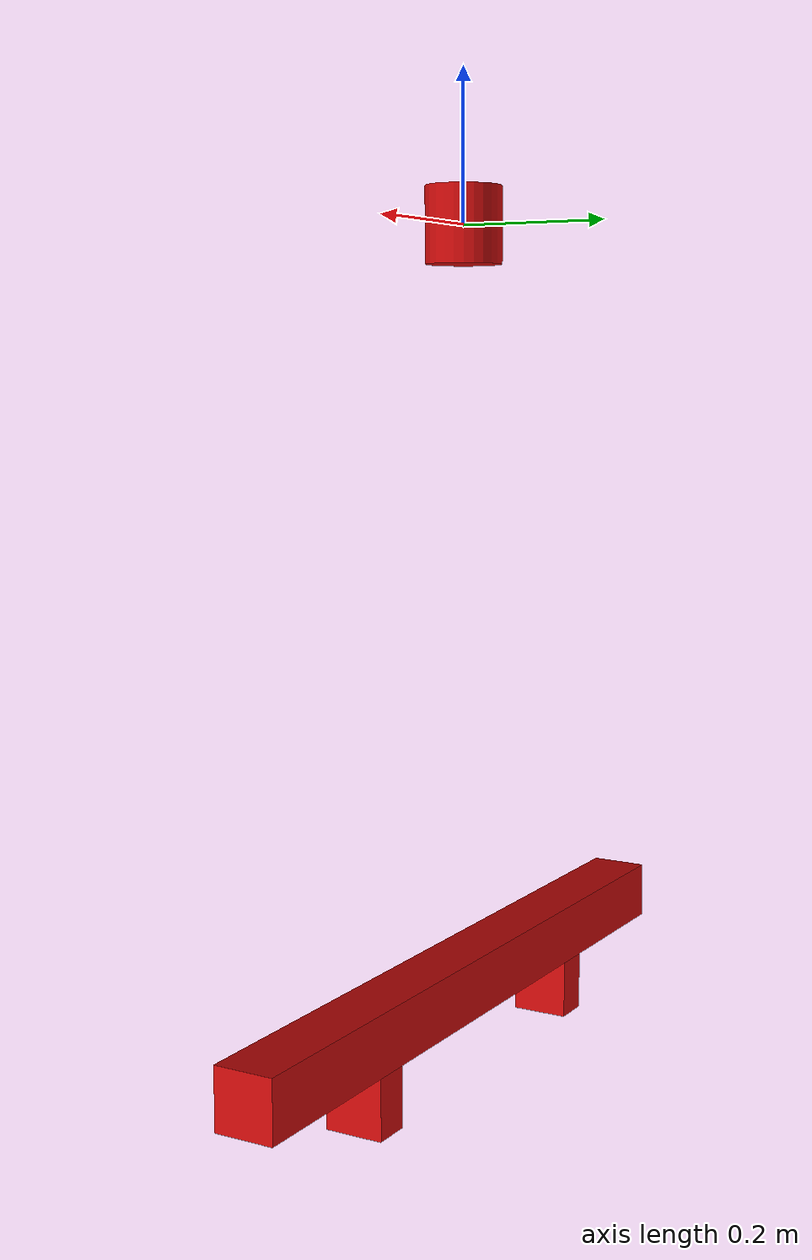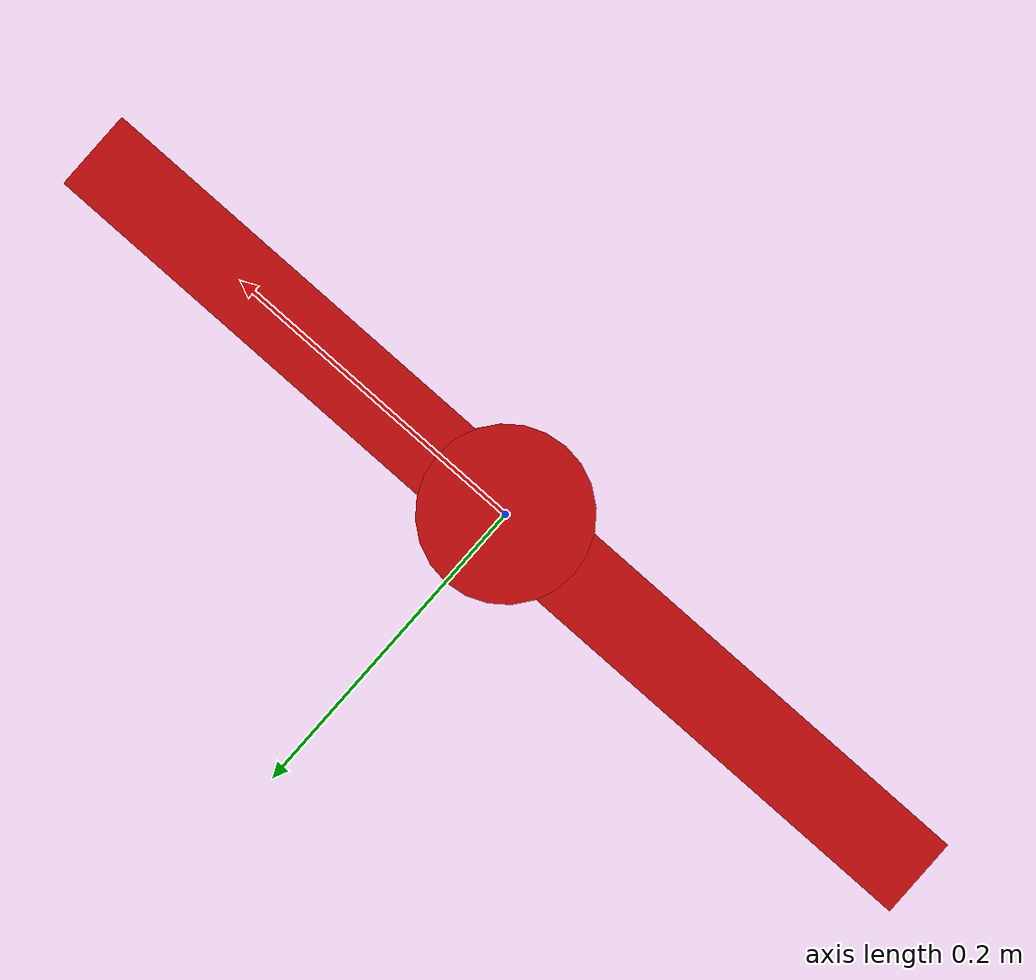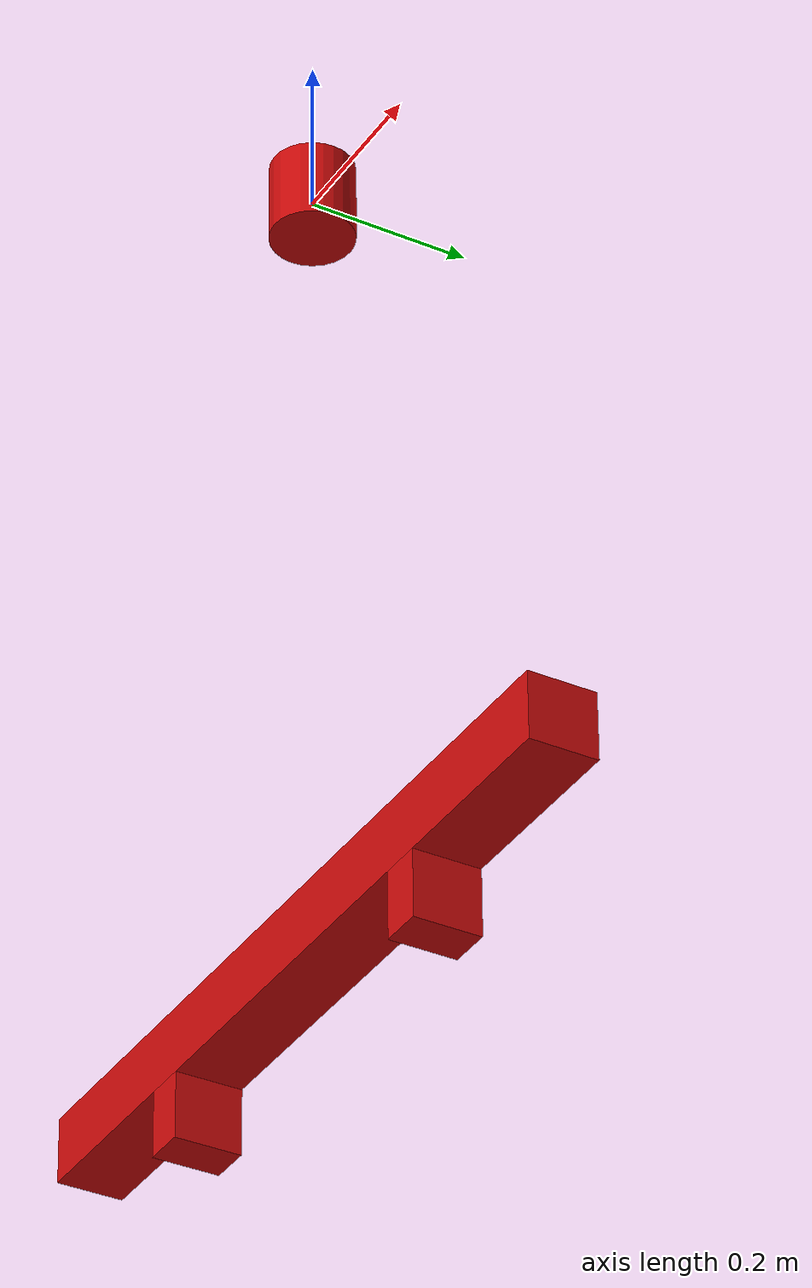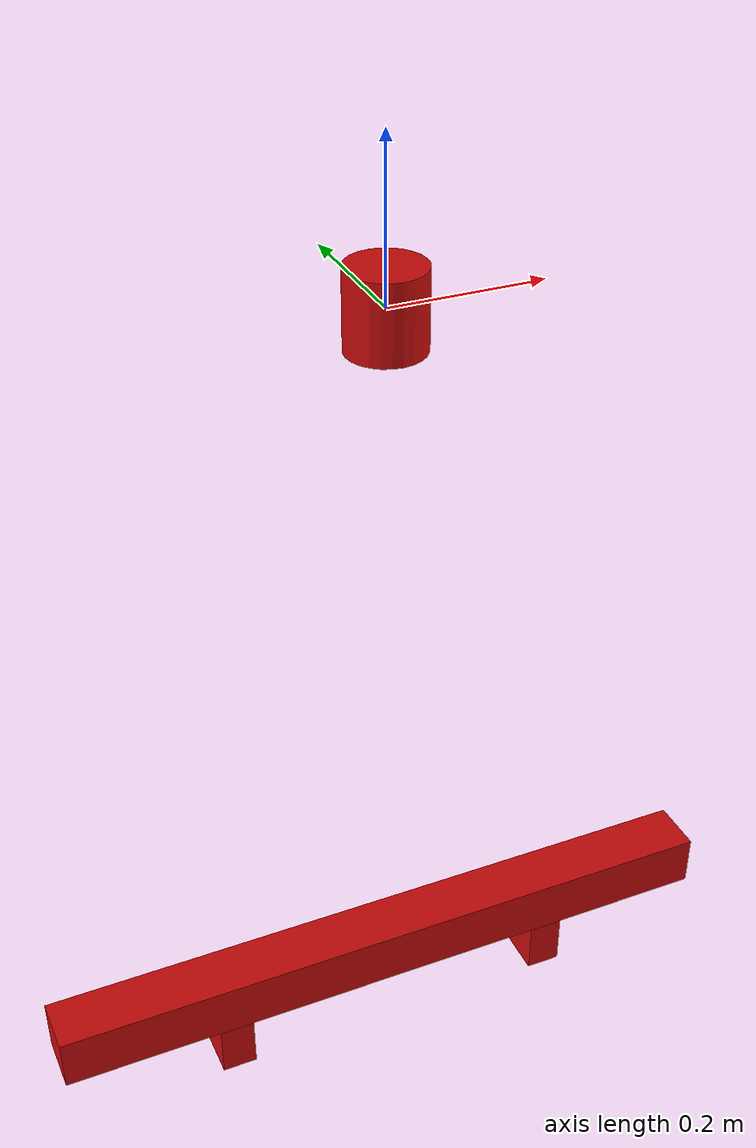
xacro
<?xml version="1.0" encoding="UTF-8"?>
<robot xmlns:xacro="http://wiki.ros.org/xacro" name="crane">

<xacro:arg name="use_mock_hardware" default="true" />

<xacro:include filename="$(find crane_description)/urdf/crane/crane_macro.xacro"/>
<xacro:include filename="$(find crane_description)/urdf/crane/crane_macro.ros2_control.xacro"/>

<xacro:crane/>
<xacro:crane_ros2_control use_mock_hardware="$(arg use_mock_hardware)" />
</robot>

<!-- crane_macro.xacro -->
<robot xmlns:xacro="http://wiki.ros.org/xacro">

<xacro:include filename="$(find crane_description)/urdf/common.xacro"/>
    <xacro:macro name="crane">
        <!-- LINKS -->
        <link name="base_link">
            <collision>
            <origin xyz="0 0 0" rpy="0 0 0"/>
            <geometry>
                <cylinder length= "0.1" radius= "0.05"/>
            </geometry>
            </collision>

            <visual>
            <origin xyz="0 0 0" rpy="0 0 0"/>
            <geometry>
                <cylinder length= "0.1" radius= "0.05"/>
            </geometry>
            <material name="light_red"/>
            </visual>
        </link>

        <link name="spreader_link">
            <collision>
            <origin xyz="0 0 0" rpy="0 0 0"/>
            <geometry>
                <box size= "1 0.08 0.08"/>
            </geometry>
            </collision>

            <visual>
            <origin xyz="0 0 0" rpy="0 0 0"/>
            <geometry>
                <box size= "1 0.08 0.08"/>
            </geometry>
            <material name="light_red"/>
            </visual>
        </link>

        <link name="LG_link">
            <collision>
            <origin xyz="0 0 0" rpy="0 0 0"/>
            <geometry>
                <box size= "0.05 0.08 0.08"/>
            </geometry>
            </collision>

            <visual>
            <origin xyz="0 0 0" rpy="0 0 0"/>
            <geometry>
                <box size= "0.05 0.08 0.08"/>
            </geometry>
            <material name="light_red"/>
            </visual>
        </link>

        <link name="RG_link">
            <collision>
            <origin xyz="0 0 0" rpy="0 0 0"/>
            <geometry>
                <box size= "0.05 0.08 0.08"/>
            </geometry>
            </collision>

            <visual>
            <origin xyz="0 0 0" rpy="0 0 0"/>
            <geometry>
                <box size= "0.05 0.08 0.08"/>
            </geometry>
            <material name="light_red"/>
            </visual>
        </link>

        <joint name="swivel_joint" type="continuous">
            <parent link="base_link"/>
            <child link="spreader_link"/>
            <origin xyz="0 0 -1" rpy="0 0 0"/>
            <axis xyz="0 0 1"/>
            <limit effort="100" velocity="1.0"/>
        </joint>

        <joint name="LG_lin_joint" type="prismatic">
            <parent link="spreader_link"/>
            <child link="LG_link"/>
            <origin xyz="-0.25 0 -0.08" rpy="0 0 0"/>
            <axis xyz="1 0 0"/>
            <limit lower="-0.5" upper="0.0" effort="100" velocity="1.0"/>
        </joint>

        <joint name="RG_lin_joint" type="prismatic">
            <parent link="spreader_link"/>
            <child link="RG_link"/>
            <origin xyz="0.25 0 -0.08" rpy="0 0 0"/>
            <axis xyz="1 0 0"/>
            <limit lower="0.0" upper="0.5" effort="100" velocity="1.0"/>
        </joint>
    </xacro:macro>
</robot>

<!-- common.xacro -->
<robot xmlns:xacro="http://www.ros.org/wiki/xacro">

    <xacro:macro name="def_inertial">
        <inertial>
            <origin xyz="0. 0. 0." rpy="0. 0. 0." />
            <mass value="0.01"/>
            <inertia
                ixx = "0.001"
                ixy = "0."
                ixz = "0."
                iyy = "0.001"
                iyz = "0."
                izz = "0.001"/>
        </inertial>
    </xacro:macro>

    <material name= "light_red">
        <color rgba="${200/255} ${10/255} ${10/255} 1.0"/>
    </material>
</robot>
